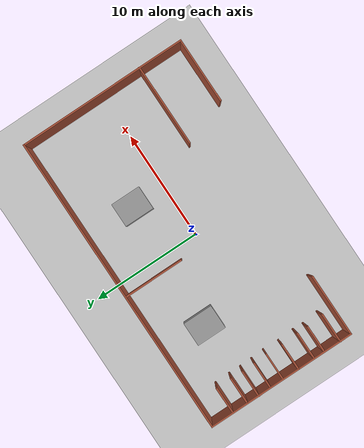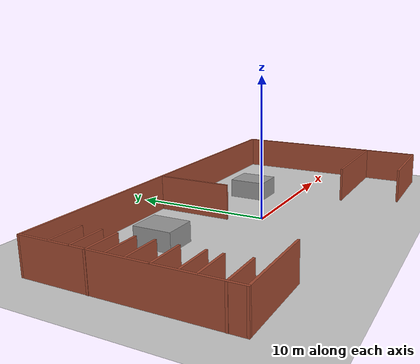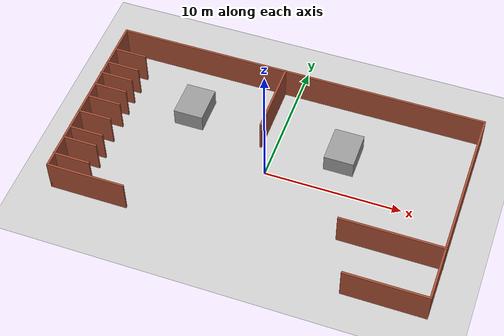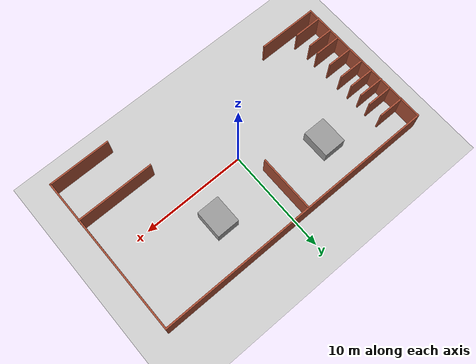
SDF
<sdf version="1.7">
 <world name="default">
  <light name="sun" type="directional">
   <pose>0 0 10 0 -0 0</pose>
   <diffuse>0.8 0.8 0.8 1</diffuse>
   <specular>0.2 0.2 0.2 1</specular>
   <attenuation>
    <range>1000</range>
    <constant>0.9</constant>
    <linear>0.01</linear>
    <quadratic>0.001</quadratic>
   </attenuation>
   <direction>-0.5 0.1 -0.9</direction>
   <spot><inner_angle>0</inner_angle><outer_angle>0</outer_angle><falloff>0</falloff></spot>
  </light>
  <model name="ground_plane">
   <static>1</static>
   <link name="link">
    <collision name="collision">
     <geometry><plane><normal>0 0 1</normal><size>100 100</size></plane></geometry>
     <surface>
      <contact><collide_bitmask>65535</collide_bitmask></contact>
      <friction><ode><mu>100</mu><mu2>50</mu2></ode></friction>
     </surface>
    </collision>
    <visual name="visual">
     <cast_shadows>0</cast_shadows>
     <geometry><plane><normal>0 0 1</normal><size>100 100</size></plane></geometry>
     <material>
      <script><uri>file://media/materials/scripts/gazebo.material</uri><name>Gazebo/Grey</name></script>
     </material>
    </visual>
   </link>
  </model>
  <gravity>0 0 -9.8</gravity>
  <magnetic_field>6e-06 2.3e-05 -4.2e-05</magnetic_field>
  <atmosphere type="adiabatic"/>
  <physics type="ode">
   <max_step_size>0.001</max_step_size>
   <real_time_factor>1</real_time_factor>
   <real_time_update_rate>1000</real_time_update_rate>
  </physics>
  <scene><ambient>0.4 0.4 0.4 1</ambient><background>0.7 0.7 0.7 1</background><shadows>1</shadows></scene>
  <spherical_coordinates>
   <surface_model>EARTH_WGS84</surface_model>
   <latitude_deg>0</latitude_deg>
   <longitude_deg>0</longitude_deg>
   <elevation>0</elevation>
   <heading_deg>0</heading_deg>
  </spherical_coordinates>
  <model name="Untitled">
   <link name="Wall_17">
    <pose>-13.7985 0.875 0 0 -0 1.5708</pose>
    <visual name="Wall_17_Visual">
     <pose>0 0 1.25 0 -0 0</pose>
     <geometry><box><size>13.75 0.15 2.5</size></box></geometry>
     <material>
      <script><uri>file://media/materials/scripts/gazebo.material</uri><name>Gazebo/Bricks</name></script>
      <ambient>1 1 1 1</ambient>
      <shader type="pixel"/>
     </material>
     <meta><layer>0</layer></meta>
    </visual>
    <collision name="Wall_17_Collision">
     <pose>0 0 1.25 0 -0 0</pose>
     <geometry><box><size>13.75 0.15 2.5</size></box></geometry>
     <surface>
      <friction>
       <ode><mu>1</mu><mu2>1</mu2><fdir1>0 0 0</fdir1><slip1>0</slip1><slip2>0</slip2></ode>
       <torsional>
        <coefficient>1</coefficient>
        <patch_radius>0</patch_radius>
        <surface_radius>0</surface_radius>
        <use_patch_radius>1</use_patch_radius>
        <ode><slip>0</slip></ode>
       </torsional>
      </friction>
      <bounce><restitution_coefficient>0</restitution_coefficient><threshold>1e+06</threshold></bounce>
      <contact>
       <collide_without_contact>0</collide_without_contact>
       <collide_without_contact_bitmask>1</collide_without_contact_bitmask>
       <collide_bitmask>1</collide_bitmask>
       <ode>
        <soft_cfm>0</soft_cfm>
        <soft_erp>0.2</soft_erp>
        <kp>1e+13</kp>
        <kd>1</kd>
        <max_vel>0.01</max_vel>
        <min_depth>0</min_depth>
       </ode>
       <bullet>
        <split_impulse>1</split_impulse>
        <split_impulse_penetration_threshold>-0.01</split_impulse_penetration_threshold>
        <soft_cfm>0</soft_cfm>
        <soft_erp>0.2</soft_erp>
        <kp>1e+13</kp>
        <kd>1</kd>
       </bullet>
      </contact>
     </surface>
    </collision>
   </link>
   <link name="Wall_18">
    <pose>0.001474 7.675 0 0 -0 0</pose>
    <visual name="Wall_18_Visual">
     <pose>0 0 1.25 0 -0 0</pose>
     <geometry><box><size>27.75 0.15 2.5</size></box></geometry>
     <material>
      <script><uri>file://media/materials/scripts/gazebo.material</uri><name>Gazebo/Bricks</name></script>
      <ambient>1 1 1 1</ambient>
      <shader type="pixel"/>
     </material>
     <meta><layer>0</layer></meta>
    </visual>
    <collision name="Wall_18_Collision">
     <pose>0 0 1.25 0 -0 0</pose>
     <geometry><box><size>27.75 0.15 2.5</size></box></geometry>
     <surface>
      <friction>
       <ode><mu>1</mu><mu2>1</mu2><fdir1>0 0 0</fdir1><slip1>0</slip1><slip2>0</slip2></ode>
       <torsional>
        <coefficient>1</coefficient>
        <patch_radius>0</patch_radius>
        <surface_radius>0</surface_radius>
        <use_patch_radius>1</use_patch_radius>
        <ode><slip>0</slip></ode>
       </torsional>
      </friction>
      <bounce><restitution_coefficient>0</restitution_coefficient><threshold>1e+06</threshold></bounce>
      <contact>
       <collide_without_contact>0</collide_without_contact>
       <collide_without_contact_bitmask>1</collide_without_contact_bitmask>
       <collide_bitmask>1</collide_bitmask>
       <ode>
        <soft_cfm>0</soft_cfm>
        <soft_erp>0.2</soft_erp>
        <kp>1e+13</kp>
        <kd>1</kd>
        <max_vel>0.01</max_vel>
        <min_depth>0</min_depth>
       </ode>
       <bullet>
        <split_impulse>1</split_impulse>
        <split_impulse_penetration_threshold>-0.01</split_impulse_penetration_threshold>
        <soft_cfm>0</soft_cfm>
        <soft_erp>0.2</soft_erp>
        <kp>1e+13</kp>
        <kd>1</kd>
       </bullet>
      </contact>
     </surface>
    </collision>
   </link>
   <link name="Wall_19">
    <pose>13.8015 0 0 0 0 -1.5708</pose>
    <visual name="Wall_19_Visual">
     <pose>0 0 1.25 0 -0 0</pose>
     <geometry><box><size>15.5 0.15 2.5</size></box></geometry>
     <material>
      <script><uri>file://media/materials/scripts/gazebo.material</uri><name>Gazebo/Bricks</name></script>
      <ambient>1 1 1 1</ambient>
      <shader type="pixel"/>
     </material>
     <meta><layer>0</layer></meta>
    </visual>
    <collision name="Wall_19_Collision">
     <pose>0 0 1.25 0 -0 0</pose>
     <geometry><box><size>15.5 0.15 2.5</size></box></geometry>
     <surface>
      <friction>
       <ode><mu>1</mu><mu2>1</mu2><fdir1>0 0 0</fdir1><slip1>0</slip1><slip2>0</slip2></ode>
       <torsional>
        <coefficient>1</coefficient>
        <patch_radius>0</patch_radius>
        <surface_radius>0</surface_radius>
        <use_patch_radius>1</use_patch_radius>
        <ode><slip>0</slip></ode>
       </torsional>
      </friction>
      <bounce><restitution_coefficient>0</restitution_coefficient><threshold>1e+06</threshold></bounce>
      <contact>
       <collide_without_contact>0</collide_without_contact>
       <collide_without_contact_bitmask>1</collide_without_contact_bitmask>
       <collide_bitmask>1</collide_bitmask>
       <ode>
        <soft_cfm>0</soft_cfm>
        <soft_erp>0.2</soft_erp>
        <kp>1e+13</kp>
        <kd>1</kd>
        <max_vel>0.01</max_vel>
        <min_depth>0</min_depth>
       </ode>
       <bullet>
        <split_impulse>1</split_impulse>
        <split_impulse_penetration_threshold>-0.01</split_impulse_penetration_threshold>
        <soft_cfm>0</soft_cfm>
        <soft_erp>0.2</soft_erp>
        <kp>1e+13</kp>
        <kd>1</kd>
       </bullet>
      </contact>
     </surface>
    </collision>
   </link>
   <link name="Wall_20">
    <pose>10.8765 -7.675 0 0 -0 3.14159</pose>
    <visual name="Wall_20_Visual">
     <pose>0 0 1.25 0 -0 0</pose>
     <geometry><box><size>6 0.15 2.5</size></box></geometry>
     <material>
      <script><uri>file://media/materials/scripts/gazebo.material</uri><name>Gazebo/Bricks</name></script>
      <ambient>1 1 1 1</ambient>
      <shader type="pixel"/>
     </material>
     <meta><layer>0</layer></meta>
    </visual>
    <collision name="Wall_20_Collision">
     <pose>0 0 1.25 0 -0 0</pose>
     <geometry><box><size>6 0.15 2.5</size></box></geometry>
     <surface>
      <friction>
       <ode><mu>1</mu><mu2>1</mu2><fdir1>0 0 0</fdir1><slip1>0</slip1><slip2>0</slip2></ode>
       <torsional>
        <coefficient>1</coefficient>
        <patch_radius>0</patch_radius>
        <surface_radius>0</surface_radius>
        <use_patch_radius>1</use_patch_radius>
        <ode><slip>0</slip></ode>
       </torsional>
      </friction>
      <bounce><restitution_coefficient>0</restitution_coefficient><threshold>1e+06</threshold></bounce>
      <contact>
       <collide_without_contact>0</collide_without_contact>
       <collide_without_contact_bitmask>1</collide_without_contact_bitmask>
       <collide_bitmask>1</collide_bitmask>
       <ode>
        <soft_cfm>0</soft_cfm>
        <soft_erp>0.2</soft_erp>
        <kp>1e+13</kp>
        <kd>1</kd>
        <max_vel>0.01</max_vel>
        <min_depth>0</min_depth>
       </ode>
       <bullet>
        <split_impulse>1</split_impulse>
        <split_impulse_penetration_threshold>-0.01</split_impulse_penetration_threshold>
        <soft_cfm>0</soft_cfm>
        <soft_erp>0.2</soft_erp>
        <kp>1e+13</kp>
        <kd>1</kd>
       </bullet>
      </contact>
     </surface>
    </collision>
   </link>
   <link name="Wall_21">
    <pose>-10.9985 -5.925 0 0 -0 0</pose>
    <visual name="Wall_21_Visual">
     <pose>0 0 1.25 0 -0 0</pose>
     <geometry><box><size>5.75 0.15 2.5</size></box></geometry>
     <material>
      <script><uri>file://media/materials/scripts/gazebo.material</uri><name>Gazebo/Bricks</name></script>
      <ambient>1 1 1 1</ambient>
      <shader type="pixel"/>
     </material>
     <meta><layer>0</layer></meta>
    </visual>
    <collision name="Wall_21_Collision">
     <pose>0 0 1.25 0 -0 0</pose>
     <geometry><box><size>5.75 0.15 2.5</size></box></geometry>
     <surface>
      <friction>
       <ode><mu>1</mu><mu2>1</mu2><fdir1>0 0 0</fdir1><slip1>0</slip1><slip2>0</slip2></ode>
       <torsional>
        <coefficient>1</coefficient>
        <patch_radius>0</patch_radius>
        <surface_radius>0</surface_radius>
        <use_patch_radius>1</use_patch_radius>
        <ode><slip>0</slip></ode>
       </torsional>
      </friction>
      <bounce><restitution_coefficient>0</restitution_coefficient><threshold>1e+06</threshold></bounce>
      <contact>
       <collide_without_contact>0</collide_without_contact>
       <collide_without_contact_bitmask>1</collide_without_contact_bitmask>
       <collide_bitmask>1</collide_bitmask>
       <ode>
        <soft_cfm>0</soft_cfm>
        <soft_erp>0.2</soft_erp>
        <kp>1e+13</kp>
        <kd>1</kd>
        <max_vel>0.01</max_vel>
        <min_depth>0</min_depth>
       </ode>
       <bullet>
        <split_impulse>1</split_impulse>
        <split_impulse_penetration_threshold>-0.01</split_impulse_penetration_threshold>
        <soft_cfm>0</soft_cfm>
        <soft_erp>0.2</soft_erp>
        <kp>1e+13</kp>
        <kd>1</kd>
       </bullet>
      </contact>
     </surface>
    </collision>
   </link>
   <link name="Wall_23">
    <pose>-12.6229 5.63002 0 0 -0 0</pose>
    <visual name="Wall_23_Visual">
     <pose>0 0 1.25 0 -0 0</pose>
     <geometry><box><size>2.5 0.15 2.5</size></box></geometry>
     <material>
      <script><uri>file://media/materials/scripts/gazebo.material</uri><name>Gazebo/Bricks</name></script>
      <ambient>1 1 1 1</ambient>
      <shader type="pixel"/>
     </material>
     <meta><layer>0</layer></meta>
    </visual>
    <collision name="Wall_23_Collision">
     <pose>0 0 1.25 0 -0 0</pose>
     <geometry><box><size>2.5 0.15 2.5</size></box></geometry>
     <surface>
      <friction>
       <ode><mu>1</mu><mu2>1</mu2><fdir1>0 0 0</fdir1><slip1>0</slip1><slip2>0</slip2></ode>
       <torsional>
        <coefficient>1</coefficient>
        <patch_radius>0</patch_radius>
        <surface_radius>0</surface_radius>
        <use_patch_radius>1</use_patch_radius>
        <ode><slip>0</slip></ode>
       </torsional>
      </friction>
      <bounce><restitution_coefficient>0</restitution_coefficient><threshold>1e+06</threshold></bounce>
      <contact>
       <collide_without_contact>0</collide_without_contact>
       <collide_without_contact_bitmask>1</collide_without_contact_bitmask>
       <collide_bitmask>1</collide_bitmask>
       <ode>
        <soft_cfm>0</soft_cfm>
        <soft_erp>0.2</soft_erp>
        <kp>1e+13</kp>
        <kd>1</kd>
        <max_vel>0.01</max_vel>
        <min_depth>0</min_depth>
       </ode>
       <bullet>
        <split_impulse>1</split_impulse>
        <split_impulse_penetration_threshold>-0.01</split_impulse_penetration_threshold>
        <soft_cfm>0</soft_cfm>
        <soft_erp>0.2</soft_erp>
        <kp>1e+13</kp>
        <kd>1</kd>
       </bullet>
      </contact>
     </surface>
    </collision>
   </link>
   <link name="Wall_25">
    <pose>-12.603 4.22075 0 0 -0 0</pose>
    <visual name="Wall_25_Visual">
     <pose>0 0 1.25 0 -0 0</pose>
     <geometry><box><size>2.5 0.15 2.5</size></box></geometry>
     <material>
      <script><uri>file://media/materials/scripts/gazebo.material</uri><name>Gazebo/Bricks</name></script>
      <ambient>1 1 1 1</ambient>
      <shader type="pixel"/>
     </material>
     <meta><layer>0</layer></meta>
    </visual>
    <collision name="Wall_25_Collision">
     <pose>0 0 1.25 0 -0 0</pose>
     <geometry><box><size>2.5 0.15 2.5</size></box></geometry>
     <surface>
      <friction>
       <ode><mu>1</mu><mu2>1</mu2><fdir1>0 0 0</fdir1><slip1>0</slip1><slip2>0</slip2></ode>
       <torsional>
        <coefficient>1</coefficient>
        <patch_radius>0</patch_radius>
        <surface_radius>0</surface_radius>
        <use_patch_radius>1</use_patch_radius>
        <ode><slip>0</slip></ode>
       </torsional>
      </friction>
      <bounce><restitution_coefficient>0</restitution_coefficient><threshold>1e+06</threshold></bounce>
      <contact>
       <collide_without_contact>0</collide_without_contact>
       <collide_without_contact_bitmask>1</collide_without_contact_bitmask>
       <collide_bitmask>1</collide_bitmask>
       <ode>
        <soft_cfm>0</soft_cfm>
        <soft_erp>0.2</soft_erp>
        <kp>1e+13</kp>
        <kd>1</kd>
        <max_vel>0.01</max_vel>
        <min_depth>0</min_depth>
       </ode>
       <bullet>
        <split_impulse>1</split_impulse>
        <split_impulse_penetration_threshold>-0.01</split_impulse_penetration_threshold>
        <soft_cfm>0</soft_cfm>
        <soft_erp>0.2</soft_erp>
        <kp>1e+13</kp>
        <kd>1</kd>
       </bullet>
      </contact>
     </surface>
    </collision>
   </link>
   <link name="Wall_27">
    <pose>-12.603 1.95799 0 0 -0 0</pose>
    <visual name="Wall_27_Visual">
     <pose>0 0 1.25 0 -0 0</pose>
     <geometry><box><size>2.5 0.15 2.5</size></box></geometry>
     <material>
      <script><uri>file://media/materials/scripts/gazebo.material</uri><name>Gazebo/Bricks</name></script>
      <ambient>1 1 1 1</ambient>
      <shader type="pixel"/>
     </material>
     <meta><layer>0</layer></meta>
    </visual>
    <collision name="Wall_27_Collision">
     <pose>0 0 1.25 0 -0 0</pose>
     <geometry><box><size>2.5 0.15 2.5</size></box></geometry>
     <surface>
      <friction>
       <ode><mu>1</mu><mu2>1</mu2><fdir1>0 0 0</fdir1><slip1>0</slip1><slip2>0</slip2></ode>
       <torsional>
        <coefficient>1</coefficient>
        <patch_radius>0</patch_radius>
        <surface_radius>0</surface_radius>
        <use_patch_radius>1</use_patch_radius>
        <ode><slip>0</slip></ode>
       </torsional>
      </friction>
      <bounce><restitution_coefficient>0</restitution_coefficient><threshold>1e+06</threshold></bounce>
      <contact>
       <collide_without_contact>0</collide_without_contact>
       <collide_without_contact_bitmask>1</collide_without_contact_bitmask>
       <collide_bitmask>1</collide_bitmask>
       <ode>
        <soft_cfm>0</soft_cfm>
        <soft_erp>0.2</soft_erp>
        <kp>1e+13</kp>
        <kd>1</kd>
        <max_vel>0.01</max_vel>
        <min_depth>0</min_depth>
       </ode>
       <bullet>
        <split_impulse>1</split_impulse>
        <split_impulse_penetration_threshold>-0.01</split_impulse_penetration_threshold>
        <soft_cfm>0</soft_cfm>
        <soft_erp>0.2</soft_erp>
        <kp>1e+13</kp>
        <kd>1</kd>
       </bullet>
      </contact>
     </surface>
    </collision>
   </link>
   <link name="Wall_29">
    <pose>-12.6427 3.12907 0 0 -0 0</pose>
    <visual name="Wall_29_Visual">
     <pose>0 0 1.25 0 -0 0</pose>
     <geometry><box><size>2.5 0.15 2.5</size></box></geometry>
     <material>
      <script><uri>file://media/materials/scripts/gazebo.material</uri><name>Gazebo/Bricks</name></script>
      <ambient>1 1 1 1</ambient>
      <shader type="pixel"/>
     </material>
     <meta><layer>0</layer></meta>
    </visual>
    <collision name="Wall_29_Collision">
     <pose>0 0 1.25 0 -0 0</pose>
     <geometry><box><size>2.5 0.15 2.5</size></box></geometry>
     <surface>
      <friction>
       <ode><mu>1</mu><mu2>1</mu2><fdir1>0 0 0</fdir1><slip1>0</slip1><slip2>0</slip2></ode>
       <torsional>
        <coefficient>1</coefficient>
        <patch_radius>0</patch_radius>
        <surface_radius>0</surface_radius>
        <use_patch_radius>1</use_patch_radius>
        <ode><slip>0</slip></ode>
       </torsional>
      </friction>
      <bounce><restitution_coefficient>0</restitution_coefficient><threshold>1e+06</threshold></bounce>
      <contact>
       <collide_without_contact>0</collide_without_contact>
       <collide_without_contact_bitmask>1</collide_without_contact_bitmask>
       <collide_bitmask>1</collide_bitmask>
       <ode>
        <soft_cfm>0</soft_cfm>
        <soft_erp>0.2</soft_erp>
        <kp>1e+13</kp>
        <kd>1</kd>
        <max_vel>0.01</max_vel>
        <min_depth>0</min_depth>
       </ode>
       <bullet>
        <split_impulse>1</split_impulse>
        <split_impulse_penetration_threshold>-0.01</split_impulse_penetration_threshold>
        <soft_cfm>0</soft_cfm>
        <soft_erp>0.2</soft_erp>
        <kp>1e+13</kp>
        <kd>1</kd>
       </bullet>
      </contact>
     </surface>
    </collision>
   </link>
   <link name="Wall_31">
    <pose>-12.603 -0.781138 0 0 -0 0</pose>
    <visual name="Wall_31_Visual">
     <pose>0 0 1.25 0 -0 0</pose>
     <geometry><box><size>2.5 0.15 2.5</size></box></geometry>
     <material>
      <script><uri>file://media/materials/scripts/gazebo.material</uri><name>Gazebo/Bricks</name></script>
      <ambient>1 1 1 1</ambient>
      <shader type="pixel"/>
     </material>
     <meta><layer>0</layer></meta>
    </visual>
    <collision name="Wall_31_Collision">
     <pose>0 0 1.25 0 -0 0</pose>
     <geometry><box><size>2.5 0.15 2.5</size></box></geometry>
     <surface>
      <friction>
       <ode><mu>1</mu><mu2>1</mu2><fdir1>0 0 0</fdir1><slip1>0</slip1><slip2>0</slip2></ode>
       <torsional>
        <coefficient>1</coefficient>
        <patch_radius>0</patch_radius>
        <surface_radius>0</surface_radius>
        <use_patch_radius>1</use_patch_radius>
        <ode><slip>0</slip></ode>
       </torsional>
      </friction>
      <bounce><restitution_coefficient>0</restitution_coefficient><threshold>1e+06</threshold></bounce>
      <contact>
       <collide_without_contact>0</collide_without_contact>
       <collide_without_contact_bitmask>1</collide_without_contact_bitmask>
       <collide_bitmask>1</collide_bitmask>
       <ode>
        <soft_cfm>0</soft_cfm>
        <soft_erp>0.2</soft_erp>
        <kp>1e+13</kp>
        <kd>1</kd>
        <max_vel>0.01</max_vel>
        <min_depth>0</min_depth>
       </ode>
       <bullet>
        <split_impulse>1</split_impulse>
        <split_impulse_penetration_threshold>-0.01</split_impulse_penetration_threshold>
        <soft_cfm>0</soft_cfm>
        <soft_erp>0.2</soft_erp>
        <kp>1e+13</kp>
        <kd>1</kd>
       </bullet>
      </contact>
     </surface>
    </collision>
   </link>
   <link name="Wall_33">
    <pose>-12.5435 0.727368 0 0 -0 0</pose>
    <visual name="Wall_33_Visual">
     <pose>0 0 1.25 0 -0 0</pose>
     <geometry><box><size>2.5 0.15 2.5</size></box></geometry>
     <material>
      <script><uri>file://media/materials/scripts/gazebo.material</uri><name>Gazebo/Bricks</name></script>
      <ambient>1 1 1 1</ambient>
      <shader type="pixel"/>
     </material>
     <meta><layer>0</layer></meta>
    </visual>
    <collision name="Wall_33_Collision">
     <pose>0 0 1.25 0 -0 0</pose>
     <geometry><box><size>2.5 0.15 2.5</size></box></geometry>
     <surface>
      <friction>
       <ode><mu>1</mu><mu2>1</mu2><fdir1>0 0 0</fdir1><slip1>0</slip1><slip2>0</slip2></ode>
       <torsional>
        <coefficient>1</coefficient>
        <patch_radius>0</patch_radius>
        <surface_radius>0</surface_radius>
        <use_patch_radius>1</use_patch_radius>
        <ode><slip>0</slip></ode>
       </torsional>
      </friction>
      <bounce><restitution_coefficient>0</restitution_coefficient><threshold>1e+06</threshold></bounce>
      <contact>
       <collide_without_contact>0</collide_without_contact>
       <collide_without_contact_bitmask>1</collide_without_contact_bitmask>
       <collide_bitmask>1</collide_bitmask>
       <ode>
        <soft_cfm>0</soft_cfm>
        <soft_erp>0.2</soft_erp>
        <kp>1e+13</kp>
        <kd>1</kd>
        <max_vel>0.01</max_vel>
        <min_depth>0</min_depth>
       </ode>
       <bullet>
        <split_impulse>1</split_impulse>
        <split_impulse_penetration_threshold>-0.01</split_impulse_penetration_threshold>
        <soft_cfm>0</soft_cfm>
        <soft_erp>0.2</soft_erp>
        <kp>1e+13</kp>
        <kd>1</kd>
       </bullet>
      </contact>
     </surface>
    </collision>
   </link>
   <link name="Wall_37">
    <pose>-12.5236 -2.32934 0 0 -0 0</pose>
    <visual name="Wall_37_Visual">
     <pose>0 0 1.25 0 -0 0</pose>
     <geometry><box><size>2.5 0.15 2.5</size></box></geometry>
     <material>
      <script><uri>file://media/materials/scripts/gazebo.material</uri><name>Gazebo/Bricks</name></script>
      <ambient>1 1 1 1</ambient>
      <shader type="pixel"/>
     </material>
     <meta><layer>0</layer></meta>
    </visual>
    <collision name="Wall_37_Collision">
     <pose>0 0 1.25 0 -0 0</pose>
     <geometry><box><size>2.5 0.15 2.5</size></box></geometry>
     <surface>
      <friction>
       <ode><mu>1</mu><mu2>1</mu2><fdir1>0 0 0</fdir1><slip1>0</slip1><slip2>0</slip2></ode>
       <torsional>
        <coefficient>1</coefficient>
        <patch_radius>0</patch_radius>
        <surface_radius>0</surface_radius>
        <use_patch_radius>1</use_patch_radius>
        <ode><slip>0</slip></ode>
       </torsional>
      </friction>
      <bounce><restitution_coefficient>0</restitution_coefficient><threshold>1e+06</threshold></bounce>
      <contact>
       <collide_without_contact>0</collide_without_contact>
       <collide_without_contact_bitmask>1</collide_without_contact_bitmask>
       <collide_bitmask>1</collide_bitmask>
       <ode>
        <soft_cfm>0</soft_cfm>
        <soft_erp>0.2</soft_erp>
        <kp>1e+13</kp>
        <kd>1</kd>
        <max_vel>0.01</max_vel>
        <min_depth>0</min_depth>
       </ode>
       <bullet>
        <split_impulse>1</split_impulse>
        <split_impulse_penetration_threshold>-0.01</split_impulse_penetration_threshold>
        <soft_cfm>0</soft_cfm>
        <soft_erp>0.2</soft_erp>
        <kp>1e+13</kp>
        <kd>1</kd>
       </bullet>
      </contact>
     </surface>
    </collision>
   </link>
   <link name="Wall_39">
    <pose>-12.5633 -3.32178 0 0 -0 0</pose>
    <visual name="Wall_39_Visual">
     <pose>0 0 1.25 0 -0 0</pose>
     <geometry><box><size>2.5 0.15 2.5</size></box></geometry>
     <material>
      <script><uri>file://media/materials/scripts/gazebo.material</uri><name>Gazebo/Bricks</name></script>
      <ambient>1 1 1 1</ambient>
      <shader type="pixel"/>
     </material>
     <meta><layer>0</layer></meta>
    </visual>
    <collision name="Wall_39_Collision">
     <pose>0 0 1.25 0 -0 0</pose>
     <geometry><box><size>2.5 0.15 2.5</size></box></geometry>
     <surface>
      <friction>
       <ode><mu>1</mu><mu2>1</mu2><fdir1>0 0 0</fdir1><slip1>0</slip1><slip2>0</slip2></ode>
       <torsional>
        <coefficient>1</coefficient>
        <patch_radius>0</patch_radius>
        <surface_radius>0</surface_radius>
        <use_patch_radius>1</use_patch_radius>
        <ode><slip>0</slip></ode>
       </torsional>
      </friction>
      <bounce><restitution_coefficient>0</restitution_coefficient><threshold>1e+06</threshold></bounce>
      <contact>
       <collide_without_contact>0</collide_without_contact>
       <collide_without_contact_bitmask>1</collide_without_contact_bitmask>
       <collide_bitmask>1</collide_bitmask>
       <ode>
        <soft_cfm>0</soft_cfm>
        <soft_erp>0.2</soft_erp>
        <kp>1e+13</kp>
        <kd>1</kd>
        <max_vel>0.01</max_vel>
        <min_depth>0</min_depth>
       </ode>
       <bullet>
        <split_impulse>1</split_impulse>
        <split_impulse_penetration_threshold>-0.01</split_impulse_penetration_threshold>
        <soft_cfm>0</soft_cfm>
        <soft_erp>0.2</soft_erp>
        <kp>1e+13</kp>
        <kd>1</kd>
       </bullet>
      </contact>
     </surface>
    </collision>
   </link>
   <link name="Wall_41">
    <pose>-12.5177 -4.86998 0 0 -0 0</pose>
    <visual name="Wall_41_Visual">
     <pose>0 0 1.25 0 -0 0</pose>
     <geometry><box><size>2.75 0.15 2.5</size></box></geometry>
     <material>
      <script><uri>file://media/materials/scripts/gazebo.material</uri><name>Gazebo/Bricks</name></script>
      <ambient>1 1 1 1</ambient>
      <shader type="pixel"/>
     </material>
     <meta><layer>0</layer></meta>
    </visual>
    <collision name="Wall_41_Collision">
     <pose>0 0 1.25 0 -0 0</pose>
     <geometry><box><size>2.75 0.15 2.5</size></box></geometry>
     <surface>
      <friction>
       <ode><mu>1</mu><mu2>1</mu2><fdir1>0 0 0</fdir1><slip1>0</slip1><slip2>0</slip2></ode>
       <torsional>
        <coefficient>1</coefficient>
        <patch_radius>0</patch_radius>
        <surface_radius>0</surface_radius>
        <use_patch_radius>1</use_patch_radius>
        <ode><slip>0</slip></ode>
       </torsional>
      </friction>
      <bounce><restitution_coefficient>0</restitution_coefficient><threshold>1e+06</threshold></bounce>
      <contact>
       <collide_without_contact>0</collide_without_contact>
       <collide_without_contact_bitmask>1</collide_without_contact_bitmask>
       <collide_bitmask>1</collide_bitmask>
       <ode>
        <soft_cfm>0</soft_cfm>
        <soft_erp>0.2</soft_erp>
        <kp>1e+13</kp>
        <kd>1</kd>
        <max_vel>0.01</max_vel>
        <min_depth>0</min_depth>
       </ode>
       <bullet>
        <split_impulse>1</split_impulse>
        <split_impulse_penetration_threshold>-0.01</split_impulse_penetration_threshold>
        <soft_cfm>0</soft_cfm>
        <soft_erp>0.2</soft_erp>
        <kp>1e+13</kp>
        <kd>1</kd>
       </bullet>
      </contact>
     </surface>
    </collision>
   </link>
   <link name="Wall_44">
    <pose>-1.11451 4.93989 0 0 0 -1.5708</pose>
    <visual name="Wall_44_Visual">
     <pose>0 0 1.25 0 -0 0</pose>
     <geometry><box><size>5.5 0.15 2.5</size></box></geometry>
     <material>
      <script><uri>file://media/materials/scripts/gazebo.material</uri><name>Gazebo/Bricks</name></script>
      <ambient>1 1 1 1</ambient>
      <shader type="pixel"/>
     </material>
     <meta><layer>0</layer></meta>
    </visual>
    <collision name="Wall_44_Collision">
     <pose>0 0 1.25 0 -0 0</pose>
     <geometry><box><size>5.5 0.15 2.5</size></box></geometry>
     <surface>
      <friction>
       <ode><mu>1</mu><mu2>1</mu2><fdir1>0 0 0</fdir1><slip1>0</slip1><slip2>0</slip2></ode>
       <torsional>
        <coefficient>1</coefficient>
        <patch_radius>0</patch_radius>
        <surface_radius>0</surface_radius>
        <use_patch_radius>1</use_patch_radius>
        <ode><slip>0</slip></ode>
       </torsional>
      </friction>
      <bounce><restitution_coefficient>0</restitution_coefficient><threshold>1e+06</threshold></bounce>
      <contact>
       <collide_without_contact>0</collide_without_contact>
       <collide_without_contact_bitmask>1</collide_without_contact_bitmask>
       <collide_bitmask>1</collide_bitmask>
       <ode>
        <soft_cfm>0</soft_cfm>
        <soft_erp>0.2</soft_erp>
        <kp>1e+13</kp>
        <kd>1</kd>
        <max_vel>0.01</max_vel>
        <min_depth>0</min_depth>
       </ode>
       <bullet>
        <split_impulse>1</split_impulse>
        <split_impulse_penetration_threshold>-0.01</split_impulse_penetration_threshold>
        <soft_cfm>0</soft_cfm>
        <soft_erp>0.2</soft_erp>
        <kp>1e+13</kp>
        <kd>1</kd>
       </bullet>
      </contact>
     </surface>
    </collision>
   </link>
   <link name="Wall_46">
    <pose>10.1427 -3.65921 0 0 -0 0</pose>
    <visual name="Wall_46_Visual">
     <pose>0 0 1.25 0 -0 0</pose>
     <geometry><box><size>7.5 0.15 2.5</size></box></geometry>
     <material>
      <script><uri>file://media/materials/scripts/gazebo.material</uri><name>Gazebo/Bricks</name></script>
      <ambient>1 1 1 1</ambient>
      <shader type="pixel"/>
     </material>
     <meta><layer>0</layer></meta>
    </visual>
    <collision name="Wall_46_Collision">
     <pose>0 0 1.25 0 -0 0</pose>
     <geometry><box><size>7.5 0.15 2.5</size></box></geometry>
     <surface>
      <friction>
       <ode><mu>1</mu><mu2>1</mu2><fdir1>0 0 0</fdir1><slip1>0</slip1><slip2>0</slip2></ode>
       <torsional>
        <coefficient>1</coefficient>
        <patch_radius>0</patch_radius>
        <surface_radius>0</surface_radius>
        <use_patch_radius>1</use_patch_radius>
        <ode><slip>0</slip></ode>
       </torsional>
      </friction>
      <bounce><restitution_coefficient>0</restitution_coefficient><threshold>1e+06</threshold></bounce>
      <contact>
       <collide_without_contact>0</collide_without_contact>
       <collide_without_contact_bitmask>1</collide_without_contact_bitmask>
       <collide_bitmask>1</collide_bitmask>
       <ode>
        <soft_cfm>0</soft_cfm>
        <soft_erp>0.2</soft_erp>
        <kp>1e+13</kp>
        <kd>1</kd>
        <max_vel>0.01</max_vel>
        <min_depth>0</min_depth>
       </ode>
       <bullet>
        <split_impulse>1</split_impulse>
        <split_impulse_penetration_threshold>-0.01</split_impulse_penetration_threshold>
        <soft_cfm>0</soft_cfm>
        <soft_erp>0.2</soft_erp>
        <kp>1e+13</kp>
        <kd>1</kd>
       </bullet>
      </contact>
     </surface>
    </collision>
   </link>
   <static>1</static>
   <pose>0.032172 -0.034798 0 0 -0 0</pose>
  </model>
  <model name="unit_box">
   <pose>4.86639 3.12766 0.67929 0 -4e-06 -1e-06</pose>
   <link name="link">
    <inertial>
     <mass>1</mass>
     <inertia>
      <ixx>0.166667</ixx>
      <ixy>0</ixy>
      <ixz>0</ixz>
      <iyy>0.166667</iyy>
      <iyz>0</iyz>
      <izz>0.166667</izz>
     </inertia>
    </inertial>
    <collision name="collision"><geometry><box><size>2.18785 2.73296 1.35859</size></box></geometry></collision>
    <visual name="visual">
     <geometry><box><size>2.18785 2.73296 1.35859</size></box></geometry>
     <material>
      <script><name>Gazebo/Grey</name><uri>file://media/materials/scripts/gazebo.material</uri></script>
     </material>
    </visual>
   </link>
  </model>
  <model name="unit_box_clone">
   <pose>-6.7229 3.64177 0.679232 4.6e-05 -0 0</pose>
   <link name="link">
    <inertial>
     <mass>1</mass>
     <inertia>
      <ixx>0.166667</ixx>
      <ixy>0</ixy>
      <ixz>0</ixz>
      <iyy>0.166667</iyy>
      <iyz>0</iyz>
      <izz>0.166667</izz>
     </inertia>
    </inertial>
    <collision name="collision"><geometry><box><size>2.18786 2.73296 1.35859</size></box></geometry></collision>
    <visual name="visual">
     <geometry><box><size>2.18786 2.73296 1.35859</size></box></geometry>
     <material>
      <script><name>Gazebo/Grey</name><uri>file://media/materials/scripts/gazebo.material</uri></script>
     </material>
    </visual>
   </link>
  </model>
 </world>
</sdf>
